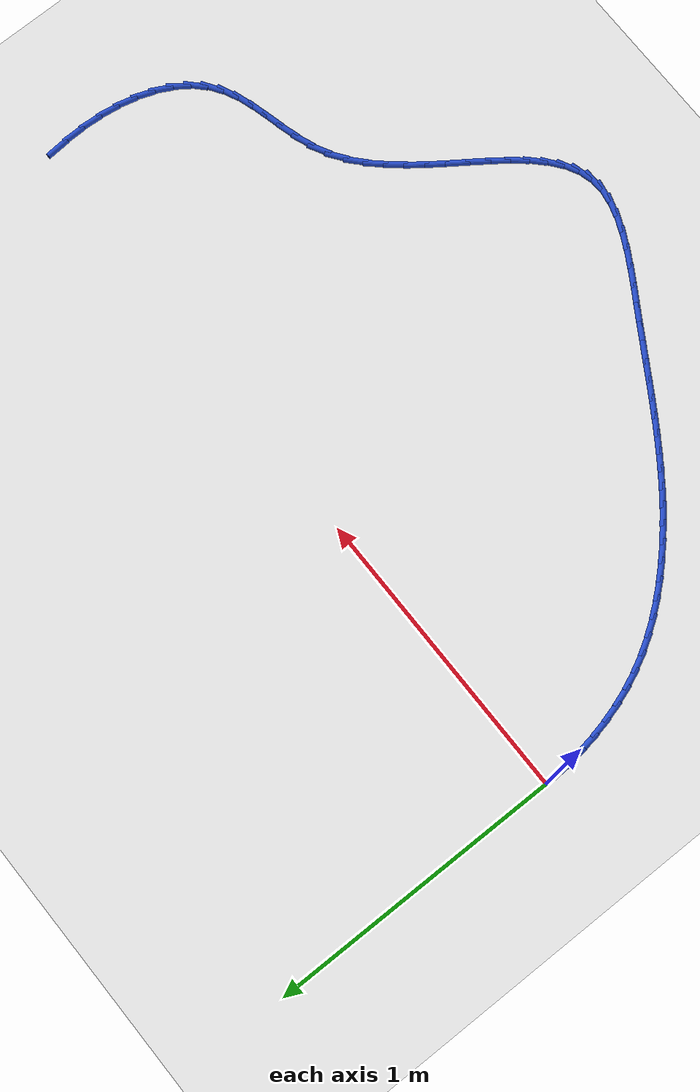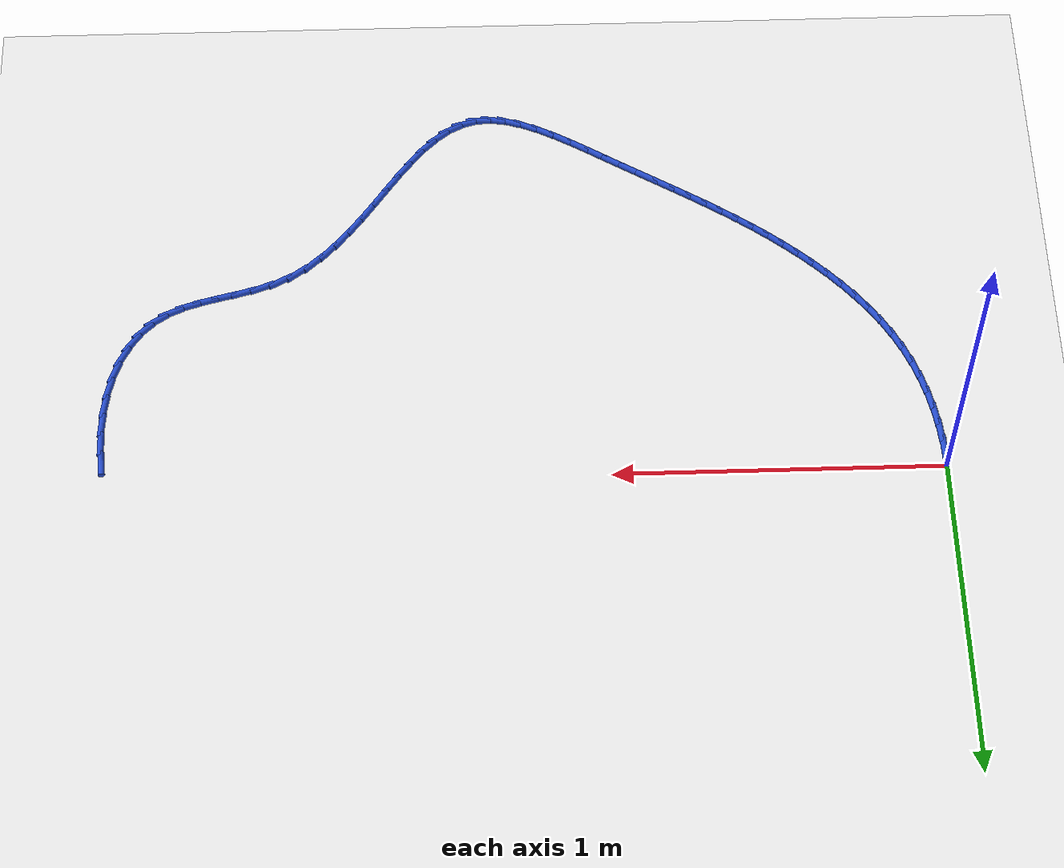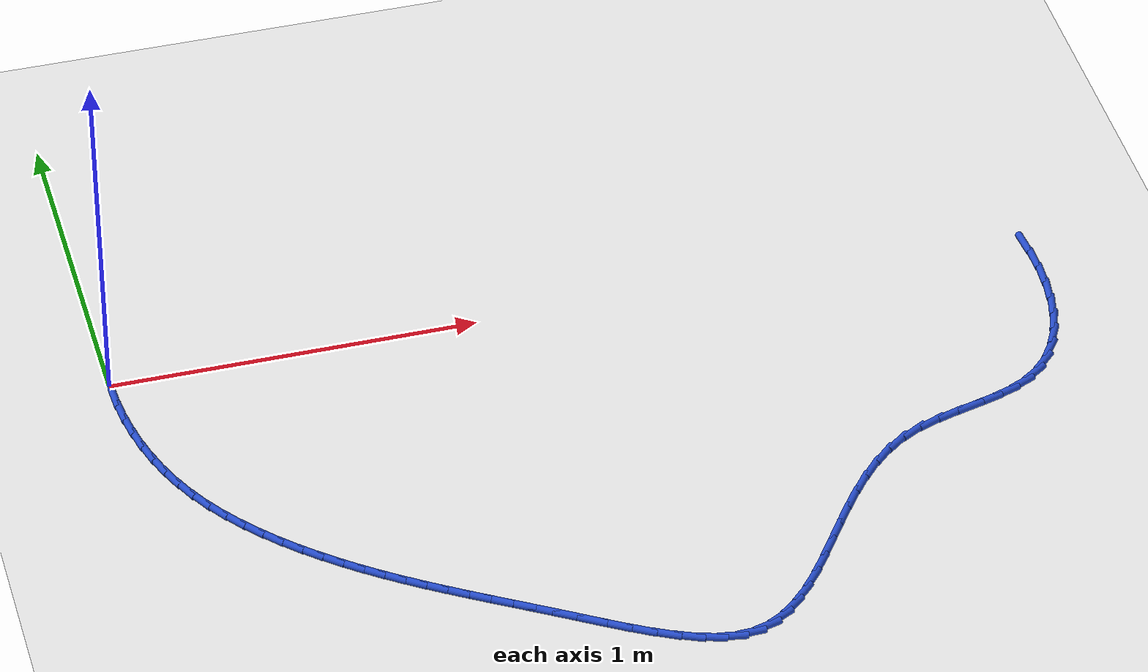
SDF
<sdf version="1.6">
 <world name="default">
  <model name="ground_plane">
   <static>1</static>
   <link name="link">
    <collision name="collision">
     <geometry><plane><normal>0 0 1</normal><size>100 100</size></plane></geometry>
     <surface><friction><ode><mu>100</mu><mu2>50</mu2></ode></friction></surface>
    </collision>
    <visual name="visual">
     <cast_shadows>0</cast_shadows>
     <geometry><plane><normal>0 0 1</normal><size>100 100</size></plane></geometry>
     <material>
      <script><uri>file://media/materials/scripts/gazebo.material</uri><name>Gazebo/WhiteGlow</name></script>
     </material>
    </visual>
   </link>
  </model>
  <model name="line">
   <link name="link_64">
    <pose>2.5183067797805614 -0.07500989555929617 0.01 0 1.57 -1.498254308256053</pose>
    <collision name="collision">
     <geometry><cylinder><radius>0.01</radius><length>0.08</length></cylinder></geometry>
    </collision>
    <visual name="visual">
     <material>
      <script><name>Gazebo/Blue</name><uri>file://media/materials/scripts/gazebo.material</uri></script>
     </material>
     <geometry><cylinder><radius>0.01</radius><length>0.08</length></cylinder></geometry>
    </visual>
   </link>
   <link name="link_65">
    <pose>2.5232180366037826 -0.14259333188737083 0.01 0 1.57 -1.5691985971084084</pose>
    <collision name="collision">
     <geometry><cylinder><radius>0.01</radius><length>0.08</length></cylinder></geometry>
    </collision>
    <visual name="visual">
     <material>
      <script><name>Gazebo/Blue</name><uri>file://media/materials/scripts/gazebo.material</uri></script>
     </material>
     <geometry><cylinder><radius>0.01</radius><length>0.08</length></cylinder></geometry>
    </visual>
   </link>
   <link name="link_66">
    <pose>2.523325042958552 -0.20956727912089534 0.01 0 1.57 1.4964387273896371</pose>
    <collision name="collision">
     <geometry><cylinder><radius>0.01</radius><length>0.08</length></cylinder></geometry>
    </collision>
    <visual name="visual">
     <material>
      <script><name>Gazebo/Blue</name><uri>file://media/materials/scripts/gazebo.material</uri></script>
     </material>
     <geometry><cylinder><radius>0.01</radius><length>0.08</length></cylinder></geometry>
    </visual>
   </link>
   <link name="link_67">
    <pose>2.518449323736291 -0.2750176152151297 0.01 0 1.57 1.4128389536556947</pose>
    <collision name="collision">
     <geometry><cylinder><radius>0.01</radius><length>0.08</length></cylinder></geometry>
    </collision>
    <visual name="visual">
     <material>
      <script><name>Gazebo/Blue</name><uri>file://media/materials/scripts/gazebo.material</uri></script>
     </material>
     <geometry><cylinder><radius>0.01</radius><length>0.08</length></cylinder></geometry>
    </visual>
   </link>
   <link name="link_68">
    <pose>2.508412403828422 -0.3380302181253316 0.01 0 1.57 1.3185520717649828</pose>
    <collision name="collision">
     <geometry><cylinder><radius>0.01</radius><length>0.08</length></cylinder></geometry>
    </collision>
    <visual name="visual">
     <material>
      <script><name>Gazebo/Blue</name><uri>file://media/materials/scripts/gazebo.material</uri></script>
     </material>
     <geometry><cylinder><radius>0.01</radius><length>0.08</length></cylinder></geometry>
    </visual>
   </link>
   <link name="link_69">
    <pose>2.493035808126369 -0.3976909658067612 0.01 0 1.57 1.2101008269600406</pose>
    <collision name="collision">
     <geometry><cylinder><radius>0.01</radius><length>0.08</length></cylinder></geometry>
    </collision>
    <visual name="visual">
     <material>
      <script><name>Gazebo/Blue</name><uri>file://media/materials/scripts/gazebo.material</uri></script>
     </material>
     <geometry><cylinder><radius>0.01</radius><length>0.08</length></cylinder></geometry>
    </visual>
   </link>
   <link name="link_70">
    <pose>2.472141061521553 -0.4530857362146788 0.01 0 1.57 1.0837861180385946</pose>
    <collision name="collision">
     <geometry><cylinder><radius>0.01</radius><length>0.08</length></cylinder></geometry>
    </collision>
    <visual name="visual">
     <material>
      <script><name>Gazebo/Blue</name><uri>file://media/materials/scripts/gazebo.material</uri></script>
     </material>
     <geometry><cylinder><radius>0.01</radius><length>0.08</length></cylinder></geometry>
    </visual>
   </link>
   <link name="link_71">
    <pose>2.4455496889053983 -0.503300407304342 0.01 0 1.57 0.9364064129270913</pose>
    <collision name="collision">
     <geometry><cylinder><radius>0.01</radius><length>0.08</length></cylinder></geometry>
    </collision>
    <visual name="visual">
     <material>
      <script><name>Gazebo/Blue</name><uri>file://media/materials/scripts/gazebo.material</uri></script>
     </material>
     <geometry><cylinder><radius>0.01</radius><length>0.08</length></cylinder></geometry>
    </visual>
   </link>
   <link name="link_72">
    <pose>2.413083215169326 -0.5474208570310111 0.01 0 1.57 0.7667846382676751</pose>
    <collision name="collision">
     <geometry><cylinder><radius>0.01</radius><length>0.08</length></cylinder></geometry>
    </collision>
    <visual name="visual">
     <material>
      <script><name>Gazebo/Blue</name><uri>file://media/materials/scripts/gazebo.material</uri></script>
     </material>
     <geometry><cylinder><radius>0.01</radius><length>0.08</length></cylinder></geometry>
    </visual>
   </link>
   <link name="link_73">
    <pose>2.3745631652047585 -0.5845329633499451 0.01 0 1.57 0.57925540584662</pose>
    <collision name="collision">
     <geometry><cylinder><radius>0.01</radius><length>0.08</length></cylinder></geometry>
    </collision>
    <visual name="visual">
     <material>
      <script><name>Gazebo/Blue</name><uri>file://media/materials/scripts/gazebo.material</uri></script>
     </material>
     <geometry><cylinder><radius>0.01</radius><length>0.08</length></cylinder></geometry>
    </visual>
   </link>
   <link name="link_74">
    <pose>2.329842412698348 -0.6137850204119237 0.01 0 1.57 0.4139954965085538</pose>
    <collision name="collision">
     <geometry><cylinder><radius>0.01</radius><length>0.08</length></cylinder></geometry>
    </collision>
    <visual name="visual">
     <material>
      <script><name>Gazebo/Blue</name><uri>file://media/materials/scripts/gazebo.material</uri></script>
     </material>
     <geometry><cylinder><radius>0.01</radius><length>0.08</length></cylinder></geometry>
    </visual>
   </link>
   <link name="link_75">
    <pose>2.2795550603623402 -0.6358807679040238 0.01 0 1.57 0.3073522508972955</pose>
    <collision name="collision">
     <geometry><cylinder><radius>0.01</radius><length>0.08</length></cylinder></geometry>
    </collision>
    <visual name="visual">
     <material>
      <script><name>Gazebo/Blue</name><uri>file://media/materials/scripts/gazebo.material</uri></script>
     </material>
     <geometry><cylinder><radius>0.01</radius><length>0.08</length></cylinder></geometry>
    </visual>
   </link>
   <link name="link_76">
    <pose>2.225151428443975 -0.6531490540024677 0.01 0 1.57 0.25466214877765814</pose>
    <collision name="collision">
     <geometry><cylinder><radius>0.01</radius><length>0.08</length></cylinder></geometry>
    </collision>
    <visual name="visual">
     <material>
      <script><name>Gazebo/Blue</name><uri>file://media/materials/scripts/gazebo.material</uri></script>
     </material>
     <geometry><cylinder><radius>0.01</radius><length>0.08</length></cylinder></geometry>
    </visual>
   </link>
   <link name="link_77">
    <pose>2.168120187898668 -0.6679950840538935 0.01 0 1.57 0.24960769802827681</pose>
    <collision name="collision">
     <geometry><cylinder><radius>0.01</radius><length>0.08</length></cylinder></geometry>
    </collision>
    <visual name="visual">
     <material>
      <script><name>Gazebo/Blue</name><uri>file://media/materials/scripts/gazebo.material</uri></script>
     </material>
     <geometry><cylinder><radius>0.01</radius><length>0.08</length></cylinder></geometry>
    </visual>
   </link>
   <link name="link_78">
    <pose>2.1099500096818304 -0.6828240634049398 0.01 0 1.57 0.2894087178911113</pose>
    <collision name="collision">
     <geometry><cylinder><radius>0.01</radius><length>0.08</length></cylinder></geometry>
    </collision>
    <visual name="visual">
     <material>
      <script><name>Gazebo/Blue</name><uri>file://media/materials/scripts/gazebo.material</uri></script>
     </material>
     <geometry><cylinder><radius>0.01</radius><length>0.08</length></cylinder></geometry>
    </visual>
   </link>
   <link name="link_79">
    <pose>2.052129564748881 -0.7000411974022446 0.01 0 1.57 0.374605157049371</pose>
    <collision name="collision">
     <geometry><cylinder><radius>0.01</radius><length>0.08</length></cylinder></geometry>
    </collision>
    <visual name="visual">
     <material>
      <script><name>Gazebo/Blue</name><uri>file://media/materials/scripts/gazebo.material</uri></script>
     </material>
     <geometry><cylinder><radius>0.01</radius><length>0.08</length></cylinder></geometry>
    </visual>
   </link>
   <link name="link_80">
    <pose>1.9961475240552302 -0.7220516913924454 0.01 0 1.57 0.5042521365719507</pose>
    <collision name="collision">
     <geometry><cylinder><radius>0.01</radius><length>0.08</length></cylinder></geometry>
    </collision>
    <visual name="visual">
     <material>
      <script><name>Gazebo/Blue</name><uri>file://media/materials/scripts/gazebo.material</uri></script>
     </material>
     <geometry><cylinder><radius>0.01</radius><length>0.08</length></cylinder></geometry>
    </visual>
   </link>
   <link name="link_81">
    <pose>1.943430376611374 -0.7511429401650744 0.01 0 1.57 0.6396644894690301</pose>
    <collision name="collision">
     <geometry><cylinder><radius>0.01</radius><length>0.08</length></cylinder></geometry>
    </collision>
    <visual name="visual">
     <material>
      <script><name>Gazebo/Blue</name><uri>file://media/materials/scripts/gazebo.material</uri></script>
     </material>
     <geometry><cylinder><radius>0.01</radius><length>0.08</length></cylinder></geometry>
    </visual>
   </link>
   <link name="link_82">
    <pose>1.8943710645456788 -0.7876441698783141 0.01 0 1.57 0.7488663373458828</pose>
    <collision name="collision">
     <geometry><cylinder><radius>0.01</radius><length>0.08</length></cylinder></geometry>
    </collision>
    <visual name="visual">
     <material>
      <script><name>Gazebo/Blue</name><uri>file://media/materials/scripts/gazebo.material</uri></script>
     </material>
     <geometry><cylinder><radius>0.01</radius><length>0.08</length></cylinder></geometry>
    </visual>
   </link>
   <link name="link_83">
    <pose>1.848510626976498 -0.8302705824210914 0.01 0 1.57 0.8325413836900561</pose>
    <collision name="collision">
     <geometry><cylinder><radius>0.01</radius><length>0.08</length></cylinder></geometry>
    </collision>
    <visual name="visual">
     <material>
      <script><name>Gazebo/Blue</name><uri>file://media/materials/scripts/gazebo.material</uri></script>
     </material>
     <geometry><cylinder><radius>0.01</radius><length>0.08</length></cylinder></geometry>
    </visual>
   </link>
   <link name="link_84">
    <pose>1.8053646758097814 -0.8776892050222653 0.01 0 1.57 0.8935011075920904</pose>
    <collision name="collision">
     <geometry><cylinder><radius>0.01</radius><length>0.08</length></cylinder></geometry>
    </collision>
    <visual name="visual">
     <material>
      <script><name>Gazebo/Blue</name><uri>file://media/materials/scripts/gazebo.material</uri></script>
     </material>
     <geometry><cylinder><radius>0.01</radius><length>0.08</length></cylinder></geometry>
    </visual>
   </link>
   <link name="link_85">
    <pose>1.7644488229514792 -0.9285670649106968 0.01 0 1.57 0.9343713126643632</pose>
    <collision name="collision">
     <geometry><cylinder><radius>0.01</radius><length>0.08</length></cylinder></geometry>
    </collision>
    <visual name="visual">
     <material>
      <script><name>Gazebo/Blue</name><uri>file://media/materials/scripts/gazebo.material</uri></script>
     </material>
     <geometry><cylinder><radius>0.01</radius><length>0.08</length></cylinder></geometry>
    </visual>
   </link>
   <link name="link_86">
    <pose>1.7252786803075415 -0.9815711893152472 0.01 0 1.57 0.9569505167199602</pose>
    <collision name="collision">
     <geometry><cylinder><radius>0.01</radius><length>0.08</length></cylinder></geometry>
    </collision>
    <visual name="visual">
     <material>
      <script><name>Gazebo/Blue</name><uri>file://media/materials/scripts/gazebo.material</uri></script>
     </material>
     <geometry><cylinder><radius>0.01</radius><length>0.08</length></cylinder></geometry>
    </visual>
   </link>
   <link name="link_87">
    <pose>1.687369859783919 -1.035368605464776 0.01 0 1.57 0.9619445303648047</pose>
    <collision name="collision">
     <geometry><cylinder><radius>0.01</radius><length>0.08</length></cylinder></geometry>
    </collision>
    <visual name="visual">
     <material>
      <script><name>Gazebo/Blue</name><uri>file://media/materials/scripts/gazebo.material</uri></script>
     </material>
     <geometry><cylinder><radius>0.01</radius><length>0.08</length></cylinder></geometry>
    </visual>
   </link>
   <link name="link_88">
    <pose>1.6502379732865613 -1.0886263405881438 0.01 0 1.57 0.948800214856278</pose>
    <collision name="collision">
     <geometry><cylinder><radius>0.01</radius><length>0.08</length></cylinder></geometry>
    </collision>
    <visual name="visual">
     <material>
      <script><name>Gazebo/Blue</name><uri>file://media/materials/scripts/gazebo.material</uri></script>
     </material>
     <geometry><cylinder><radius>0.01</radius><length>0.08</length></cylinder></geometry>
    </visual>
   </link>
   <link name="link_89">
    <pose>1.6133986327214191 -1.140011421914212 0.01 0 1.57 0.9154911828290663</pose>
    <collision name="collision">
     <geometry><cylinder><radius>0.01</radius><length>0.08</length></cylinder></geometry>
    </collision>
    <visual name="visual">
     <material>
      <script><name>Gazebo/Blue</name><uri>file://media/materials/scripts/gazebo.material</uri></script>
     </material>
     <geometry><cylinder><radius>0.01</radius><length>0.08</length></cylinder></geometry>
    </visual>
   </link>
   <link name="link_90">
    <pose>1.576367449994442 -1.1881908766718403 0.01 0 1.57 0.8582079959114611</pose>
    <collision name="collision">
     <geometry><cylinder><radius>0.01</radius><length>0.08</length></cylinder></geometry>
    </collision>
    <visual name="visual">
     <material>
      <script><name>Gazebo/Blue</name><uri>file://media/materials/scripts/gazebo.material</uri></script>
     </material>
     <geometry><cylinder><radius>0.01</radius><length>0.08</length></cylinder></geometry>
    </visual>
   </link>
   <link name="link_91">
    <pose>1.5386600370115797 -1.2318317320898904 0.01 0 1.57 0.7710621606594699</pose>
    <collision name="collision">
     <geometry><cylinder><radius>0.01</radius><length>0.08</length></cylinder></geometry>
    </collision>
    <visual name="visual">
     <material>
      <script><name>Gazebo/Blue</name><uri>file://media/materials/scripts/gazebo.material</uri></script>
     </material>
     <geometry><cylinder><radius>0.01</radius><length>0.08</length></cylinder></geometry>
    </visual>
   </link>
   <link name="link_92">
    <pose>1.4997920056787837 -1.2696010153972213 0.01 0 1.57 0.6463379511520345</pose>
    <collision name="collision">
     <geometry><cylinder><radius>0.01</radius><length>0.08</length></cylinder></geometry>
    </collision>
    <visual name="visual">
     <material>
      <script><name>Gazebo/Blue</name><uri>file://media/materials/scripts/gazebo.material</uri></script>
     </material>
     <geometry><cylinder><radius>0.01</radius><length>0.08</length></cylinder></geometry>
    </visual>
   </link>
   <link name="link_93">
    <pose>1.4592789679020037 -1.3001657538226938 0.01 0 1.57 0.476804820001138</pose>
    <collision name="collision">
     <geometry><cylinder><radius>0.01</radius><length>0.08</length></cylinder></geometry>
    </collision>
    <visual name="visual">
     <material>
      <script><name>Gazebo/Blue</name><uri>file://media/materials/scripts/gazebo.material</uri></script>
     </material>
     <geometry><cylinder><radius>0.01</radius><length>0.08</length></cylinder></geometry>
    </visual>
   </link>
   <link name="link_94">
    <pose>1.4166365355871888 -1.3221929745951697 0.01 0 1.57 0.2624252761319242</pose>
    <collision name="collision">
     <geometry><cylinder><radius>0.01</radius><length>0.08</length></cylinder></geometry>
    </collision>
    <visual name="visual">
     <material>
      <script><name>Gazebo/Blue</name><uri>file://media/materials/scripts/gazebo.material</uri></script>
     </material>
     <geometry><cylinder><radius>0.01</radius><length>0.08</length></cylinder></geometry>
    </visual>
   </link>
   <link name="link_95">
    <pose>1.371380320640291 -1.3343497049435085 0.01 0 1.57 0.02587186396665653</pose>
    <collision name="collision">
     <geometry><cylinder><radius>0.01</radius><length>0.08</length></cylinder></geometry>
    </collision>
    <visual name="visual">
     <material>
      <script><name>Gazebo/Blue</name><uri>file://media/materials/scripts/gazebo.material</uri></script>
     </material>
     <geometry><cylinder><radius>0.01</radius><length>0.08</length></cylinder></geometry>
    </visual>
   </link>
   <link name="link_96">
    <pose>1.3231315503918655 -1.3355982691532429 0.01 0 1.57 -0.17044622289939781</pose>
    <collision name="collision">
     <geometry><cylinder><radius>0.01</radius><length>0.08</length></cylinder></geometry>
    </collision>
    <visual name="visual">
     <material>
      <script><name>Gazebo/Blue</name><uri>file://media/materials/scripts/gazebo.material</uri></script>
     </material>
     <geometry><cylinder><radius>0.01</radius><length>0.08</length></cylinder></geometry>
    </visual>
   </link>
   <link name="link_97">
    <pose>1.2722022773683568 -1.32683251474888 0.01 0 1.57 -0.3121540910296375</pose>
    <collision name="collision">
     <geometry><cylinder><radius>0.01</radius><length>0.08</length></cylinder></geometry>
    </collision>
    <visual name="visual">
     <material>
      <script><name>Gazebo/Blue</name><uri>file://media/materials/scripts/gazebo.material</uri></script>
     </material>
     <geometry><cylinder><radius>0.01</radius><length>0.08</length></cylinder></geometry>
    </visual>
   </link>
   <link name="link_98">
    <pose>1.2191822532940766 -1.3097227265610931 0.01 0 1.57 -0.4113139357186306</pose>
    <collision name="collision">
     <geometry><cylinder><radius>0.01</radius><length>0.08</length></cylinder></geometry>
    </collision>
    <visual name="visual">
     <material>
      <script><name>Gazebo/Blue</name><uri>file://media/materials/scripts/gazebo.material</uri></script>
     </material>
     <geometry><cylinder><radius>0.01</radius><length>0.08</length></cylinder></geometry>
    </visual>
   </link>
   <link name="link_99">
    <pose>1.1646619844875623 -1.2859412992397847 0.01 0 1.57 -0.47890942821124005</pose>
    <collision name="collision">
     <geometry><cylinder><radius>0.01</radius><length>0.08</length></cylinder></geometry>
    </collision>
    <visual name="visual">
     <material>
      <script><name>Gazebo/Blue</name><uri>file://media/materials/scripts/gazebo.material</uri></script>
     </material>
     <geometry><cylinder><radius>0.01</radius><length>0.08</length></cylinder></geometry>
    </visual>
   </link>
   <link name="link_100">
    <pose>1.1092319772673531 -1.2571606274348577 0.01 0 1.57 -0.5225310630293606</pose>
    <collision name="collision">
     <geometry><cylinder><radius>0.01</radius><length>0.08</length></cylinder></geometry>
    </collision>
    <visual name="visual">
     <material>
      <script><name>Gazebo/Blue</name><uri>file://media/materials/scripts/gazebo.material</uri></script>
     </material>
     <geometry><cylinder><radius>0.01</radius><length>0.08</length></cylinder></geometry>
    </visual>
   </link>
   <link name="link_101">
    <pose>1.0534827379519862 -1.225053105796215 0.01 0 1.57 -0.5466938857304527</pose>
    <collision name="collision">
     <geometry><cylinder><radius>0.01</radius><length>0.08</length></cylinder></geometry>
    </collision>
    <visual name="visual">
     <material>
      <script><name>Gazebo/Blue</name><uri>file://media/materials/scripts/gazebo.material</uri></script>
     </material>
     <geometry><cylinder><radius>0.01</radius><length>0.08</length></cylinder></geometry>
    </visual>
   </link>
   <link name="link_102">
    <pose>0.998004772859998 -1.1912911289737587 0.01 0 1.57 -0.5534525454665101</pose>
    <collision name="collision">
     <geometry><cylinder><radius>0.01</radius><length>0.08</length></cylinder></geometry>
    </collision>
    <visual name="visual">
     <material>
      <script><name>Gazebo/Blue</name><uri>file://media/materials/scripts/gazebo.material</uri></script>
     </material>
     <geometry><cylinder><radius>0.01</radius><length>0.08</length></cylinder></geometry>
    </visual>
   </link>
   <link name="link_103">
    <pose>0.9433879689586145 -1.1575452814168554 0.01 0 1.57 -0.5483787728879024</pose>
    <collision name="collision">
     <geometry><cylinder><radius>0.01</radius><length>0.08</length></cylinder></geometry>
    </collision>
    <visual name="visual">
     <material>
      <script><name>Gazebo/Blue</name><uri>file://media/materials/scripts/gazebo.material</uri></script>
     </material>
     <geometry><cylinder><radius>0.01</radius><length>0.08</length></cylinder></geometry>
    </visual>
   </link>
   <link name="link_104">
    <pose>0.8900411503045976 -1.1249569484429132 0.01 0 1.57 -0.5445205662923033</pose>
    <collision name="collision">
     <geometry><cylinder><radius>0.01</radius><length>0.08</length></cylinder></geometry>
    </collision>
    <visual name="visual">
     <material>
      <script><name>Gazebo/Blue</name><uri>file://media/materials/scripts/gazebo.material</uri></script>
     </material>
     <geometry><cylinder><radius>0.01</radius><length>0.08</length></cylinder></geometry>
    </visual>
   </link>
   <link name="link_105">
    <pose>0.8379414628642928 -1.09340583416609 0.01 0 1.57 -0.5440948986298054</pose>
    <collision name="collision">
     <geometry><cylinder><radius>0.01</radius><length>0.08</length></cylinder></geometry>
    </collision>
    <visual name="visual">
     <material>
      <script><name>Gazebo/Blue</name><uri>file://media/materials/scripts/gazebo.material</uri></script>
     </material>
     <geometry><cylinder><radius>0.01</radius><length>0.08</length></cylinder></geometry>
    </visual>
   </link>
   <link name="link_106">
    <pose>0.7870030940395858 -1.062587631421941 0.01 0 1.57 -0.5473489649932065</pose>
    <collision name="collision">
     <geometry><cylinder><radius>0.01</radius><length>0.08</length></cylinder></geometry>
    </collision>
    <visual name="visual">
     <material>
      <script><name>Gazebo/Blue</name><uri>file://media/materials/scripts/gazebo.material</uri></script>
     </material>
     <geometry><cylinder><radius>0.01</radius><length>0.08</length></cylinder></geometry>
    </visual>
   </link>
   <link name="link_107">
    <pose>0.7371402312323612 -1.0321980330460212 0.01 0 1.57 -0.5544625355192677</pose>
    <collision name="collision">
     <geometry><cylinder><radius>0.01</radius><length>0.08</length></cylinder></geometry>
    </collision>
    <visual name="visual">
     <material>
      <script><name>Gazebo/Blue</name><uri>file://media/materials/scripts/gazebo.material</uri></script>
     </material>
     <geometry><cylinder><radius>0.01</radius><length>0.08</length></cylinder></geometry>
    </visual>
   </link>
   <link name="link_108">
    <pose>0.6882670618445061 -1.0019327318738869 0.01 0 1.57 -0.5655323738485941</pose>
    <collision name="collision">
     <geometry><cylinder><radius>0.01</radius><length>0.08</length></cylinder></geometry>
    </collision>
    <visual name="visual">
     <material>
      <script><name>Gazebo/Blue</name><uri>file://media/materials/scripts/gazebo.material</uri></script>
     </material>
     <geometry><cylinder><radius>0.01</radius><length>0.08</length></cylinder></geometry>
    </visual>
   </link>
   <link name="link_109">
    <pose>0.6402977732779056 -0.9714874207410931 0.01 0 1.57 -0.5805582759958763</pose>
    <collision name="collision">
     <geometry><cylinder><radius>0.01</radius><length>0.08</length></cylinder></geometry>
    </collision>
    <visual name="visual">
     <material>
      <script><name>Gazebo/Blue</name><uri>file://media/materials/scripts/gazebo.material</uri></script>
     </material>
     <geometry><cylinder><radius>0.01</radius><length>0.08</length></cylinder></geometry>
    </visual>
   </link>
   <link name="link_110">
    <pose>0.5931465529344444 -0.9405577924831947 0.01 0 1.57 -0.5994323162284173</pose>
    <collision name="collision">
     <geometry><cylinder><radius>0.01</radius><length>0.08</length></cylinder></geometry>
    </collision>
    <visual name="visual">
     <material>
      <script><name>Gazebo/Blue</name><uri>file://media/materials/scripts/gazebo.material</uri></script>
     </material>
     <geometry><cylinder><radius>0.01</radius><length>0.08</length></cylinder></geometry>
    </visual>
   </link>
   <link name="link_111">
    <pose>0.5467275882160094 -0.9088395399357478 0.01 0 1.57 -0.6219331601104747</pose>
    <collision name="collision">
     <geometry><cylinder><radius>0.01</radius><length>0.08</length></cylinder></geometry>
    </collision>
    <visual name="visual">
     <material>
      <script><name>Gazebo/Blue</name><uri>file://media/materials/scripts/gazebo.material</uri></script>
     </material>
     <geometry><cylinder><radius>0.01</radius><length>0.08</length></cylinder></geometry>
    </visual>
   </link>
   <link name="link_112">
    <pose>0.5009550665244857 -0.8760283559343077 0.01 0 1.57 -0.6477272970546563</pose>
    <collision name="collision">
     <geometry><cylinder><radius>0.01</radius><length>0.08</length></cylinder></geometry>
    </collision>
    <visual name="visual">
     <material>
      <script><name>Gazebo/Blue</name><uri>file://media/materials/scripts/gazebo.material</uri></script>
     </material>
     <geometry><cylinder><radius>0.01</radius><length>0.08</length></cylinder></geometry>
    </visual>
   </link>
   <link name="link_113">
    <pose>0.4557431752617588 -0.8418199333144295 0.01 0 1.57 -0.6763943025385836</pose>
    <collision name="collision">
     <geometry><cylinder><radius>0.01</radius><length>0.08</length></cylinder></geometry>
    </collision>
    <visual name="visual">
     <material>
      <script><name>Gazebo/Blue</name><uri>file://media/materials/scripts/gazebo.material</uri></script>
     </material>
     <geometry><cylinder><radius>0.01</radius><length>0.08</length></cylinder></geometry>
    </visual>
   </link>
   <link name="link_114">
    <pose>0.41101428610527474 -0.8059153783753039 0.01 0 1.57 -0.7079828592373452</pose>
    <collision name="collision">
     <geometry><cylinder><radius>0.01</radius><length>0.08</length></cylinder></geometry>
    </collision>
    <visual name="visual">
     <material>
      <script><name>Gazebo/Blue</name><uri>file://media/materials/scripts/gazebo.material</uri></script>
     </material>
     <geometry><cylinder><radius>0.01</radius><length>0.08</length></cylinder></geometry>
    </visual>
   </link>
   <link name="link_115">
    <pose>0.3669094995348302 -0.7681604749026885 0.01 0 1.57 -0.7431063903022241</pose>
    <collision name="collision">
     <geometry><cylinder><radius>0.01</radius><length>0.08</length></cylinder></geometry>
    </collision>
    <visual name="visual">
     <material>
      <script><name>Gazebo/Blue</name><uri>file://media/materials/scripts/gazebo.material</uri></script>
     </material>
     <geometry><cylinder><radius>0.01</radius><length>0.08</length></cylinder></geometry>
    </visual>
   </link>
   <link name="link_116">
    <pose>0.32380705785138564 -0.7285578634029803 0.01 0 1.57 -0.782149155146715</pose>
    <collision name="collision">
     <geometry><cylinder><radius>0.01</radius><length>0.08</length></cylinder></geometry>
    </collision>
    <visual name="visual">
     <material>
      <script><name>Gazebo/Blue</name><uri>file://media/materials/scripts/gazebo.material</uri></script>
     </material>
     <geometry><cylinder><radius>0.01</radius><length>0.08</length></cylinder></geometry>
    </visual>
   </link>
   <link name="link_117">
    <pose>0.28209707777848403 -0.6871180386824915 0.01 0 1.57 -0.8255134632798224</pose>
    <collision name="collision">
     <geometry><cylinder><radius>0.01</radius><length>0.08</length></cylinder></geometry>
    </collision>
    <visual name="visual">
     <material>
      <script><name>Gazebo/Blue</name><uri>file://media/materials/scripts/gazebo.material</uri></script>
     </material>
     <geometry><cylinder><radius>0.01</radius><length>0.08</length></cylinder></geometry>
    </visual>
   </link>
   <link name="link_118">
    <pose>0.2421696760396686 -0.6438514955475333 0.01 0 1.57 -0.8736315828132198</pose>
    <collision name="collision">
     <geometry><cylinder><radius>0.01</radius><length>0.08</length></cylinder></geometry>
    </collision>
    <visual name="visual">
     <material>
      <script><name>Gazebo/Blue</name><uri>file://media/materials/scripts/gazebo.material</uri></script>
     </material>
     <geometry><cylinder><radius>0.01</radius><length>0.08</length></cylinder></geometry>
    </visual>
   </link>
   <link name="link_119">
    <pose>0.2044149693584843 -0.5987687288044197 0.01 0 1.57 -0.9269469319951973</pose>
    <collision name="collision">
     <geometry><cylinder><radius>0.01</radius><length>0.08</length></cylinder></geometry>
    </collision>
    <visual name="visual">
     <material>
      <script><name>Gazebo/Blue</name><uri>file://media/materials/scripts/gazebo.material</uri></script>
     </material>
     <geometry><cylinder><radius>0.01</radius><length>0.08</length></cylinder></geometry>
    </visual>
   </link>
   <link name="link_120">
    <pose>0.16922307445847412 -0.5518802332594619 0.01 0 1.57 -0.9858838317323432</pose>
    <collision name="collision">
     <geometry><cylinder><radius>0.01</radius><length>0.08</length></cylinder></geometry>
    </collision>
    <visual name="visual">
     <material>
      <script><name>Gazebo/Blue</name><uri>file://media/materials/scripts/gazebo.material</uri></script>
     </material>
     <geometry><cylinder><radius>0.01</radius><length>0.08</length></cylinder></geometry>
    </visual>
   </link>
   <link name="link_121">
    <pose>0.13698410806318181 -0.5031965037189726 0.01 0 1.57 -1.0507843004074637</pose>
    <collision name="collision">
     <geometry><cylinder><radius>0.01</radius><length>0.08</length></cylinder></geometry>
    </collision>
    <visual name="visual">
     <material>
      <script><name>Gazebo/Blue</name><uri>file://media/materials/scripts/gazebo.material</uri></script>
     </material>
     <geometry><cylinder><radius>0.01</radius><length>0.08</length></cylinder></geometry>
    </visual>
   </link>
   <link name="link_122">
    <pose>0.10808716860777168 -0.45272835862232724 0.01 0 1.57 -1.1192933048382294</pose>
    <collision name="collision">
     <geometry><cylinder><radius>0.01</radius><length>0.08</length></cylinder></geometry>
    </collision>
    <visual name="visual">
     <material>
      <script><name>Gazebo/Blue</name><uri>file://media/materials/scripts/gazebo.material</uri></script>
     </material>
     <geometry><cylinder><radius>0.01</radius><length>0.08</length></cylinder></geometry>
    </visual>
   </link>
   <link name="link_123">
    <pose>0.08277688255076415 -0.4005325325848578 0.01 0 1.57 -1.1860913750708386</pose>
    <collision name="collision">
     <geometry><cylinder><radius>0.01</radius><length>0.08</length></cylinder></geometry>
    </collision>
    <visual name="visual">
     <material>
      <script><name>Gazebo/Blue</name><uri>file://media/materials/scripts/gazebo.material</uri></script>
     </material>
     <geometry><cylinder><radius>0.01</radius><length>0.08</length></cylinder></geometry>
    </visual>
   </link>
   <link name="link_124">
    <pose>0.06100506010368152 -0.34675882326867324 0.01 0 1.57 -1.2503490002035391</pose>
    <collision name="collision">
     <geometry><cylinder><radius>0.01</radius><length>0.08</length></cylinder></geometry>
    </collision>
    <visual name="visual">
     <material>
      <script><name>Gazebo/Blue</name><uri>file://media/materials/scripts/gazebo.material</uri></script>
     </material>
     <geometry><cylinder><radius>0.01</radius><length>0.08</length></cylinder></geometry>
    </visual>
   </link>
   <link name="link_125">
    <pose>0.042688096601709136 -0.2915682839145135 0.01 0 1.57 -1.3119585949319101</pose>
    <collision name="collision">
     <geometry><cylinder><radius>0.01</radius><length>0.08</length></cylinder></geometry>
    </collision>
    <visual name="visual">
     <material>
      <script><name>Gazebo/Blue</name><uri>file://media/materials/scripts/gazebo.material</uri></script>
     </material>
     <geometry><cylinder><radius>0.01</radius><length>0.08</length></cylinder></geometry>
    </visual>
   </link>
   <link name="link_126">
    <pose>0.027742387380032506 -0.23512196776311822 0.01 0 1.57 -1.3708979322176393</pose>
    <collision name="collision">
     <geometry><cylinder><radius>0.01</radius><length>0.08</length></cylinder></geometry>
    </collision>
    <visual name="visual">
     <material>
      <script><name>Gazebo/Blue</name><uri>file://media/materials/scripts/gazebo.material</uri></script>
     </material>
     <geometry><cylinder><radius>0.01</radius><length>0.08</length></cylinder></geometry>
    </visual>
   </link>
   <link name="link_127">
    <pose>0.01608432777383771 -0.17758092805522918 0.01 0 1.57 -1.4272156181696356</pose>
    <collision name="collision">
     <geometry><cylinder><radius>0.01</radius><length>0.08</length></cylinder></geometry>
    </collision>
    <visual name="visual">
     <material>
      <script><name>Gazebo/Blue</name><uri>file://media/materials/scripts/gazebo.material</uri></script>
     </material>
     <geometry><cylinder><radius>0.01</radius><length>0.08</length></cylinder></geometry>
    </visual>
   </link>
   <link name="link_128">
    <pose>0.007630313118310234 -0.11910621803158622 0.01 0 1.57 -1.481016137048894</pose>
    <collision name="collision">
     <geometry><cylinder><radius>0.01</radius><length>0.08</length></cylinder></geometry>
    </collision>
    <visual name="visual">
     <material>
      <script><name>Gazebo/Blue</name><uri>file://media/materials/scripts/gazebo.material</uri></script>
     </material>
     <geometry><cylinder><radius>0.01</radius><length>0.08</length></cylinder></geometry>
    </visual>
   </link>
   <link name="link_129">
    <pose>0.0022967387486357667 -0.05985889093292974 0.01 0 1.57 -1.5324459226429052</pose>
    <collision name="collision">
     <geometry><cylinder><radius>0.01</radius><length>0.08</length></cylinder></geometry>
    </collision>
    <visual name="visual">
     <material>
      <script><name>Gazebo/Blue</name><uri>file://media/materials/scripts/gazebo.material</uri></script>
     </material>
     <geometry><cylinder><radius>0.01</radius><length>0.08</length></cylinder></geometry>
    </visual>
   </link>
  </model>
 </world>
</sdf>
